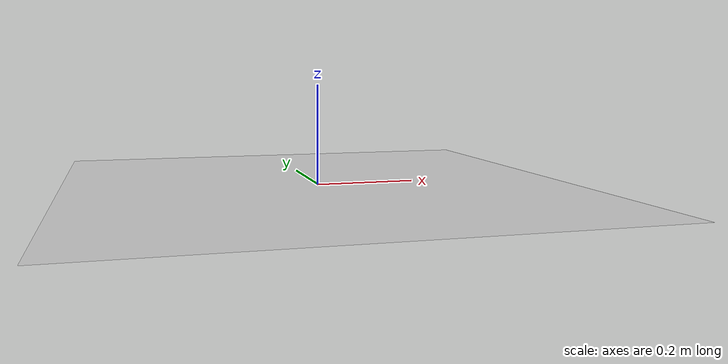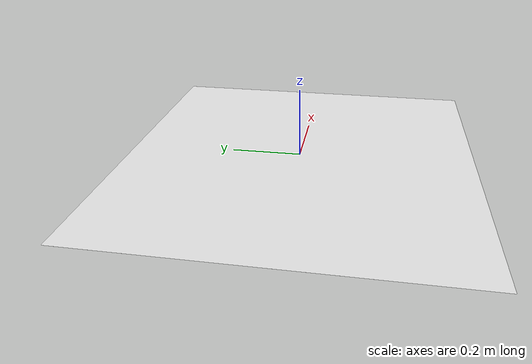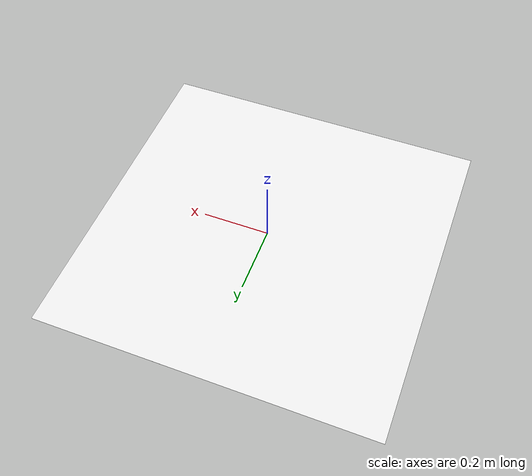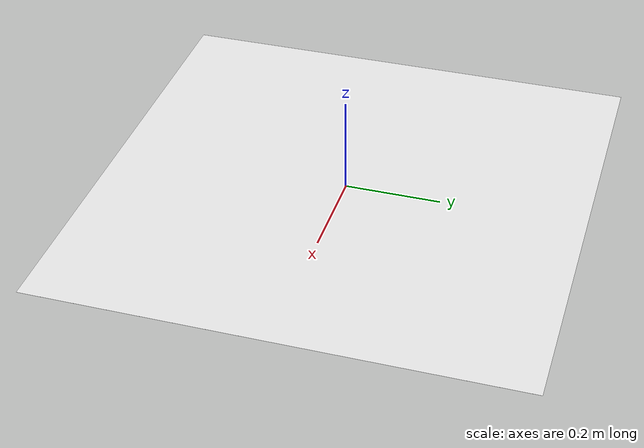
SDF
<?xml version='1.0'?>
<sdf version='1.6'>
    <model name='aruco_visual_marker_0'>
     <pose>0 0 0 0 0 0</pose>
         <link name='marker'>
     <pose frame=''>0 0 0 0 0 3.14</pose>
      <visual name='visual'>
          <geometry>
               <box>
                    <size>1 1 1e-05</size>
               </box>
          </geometry>
          <material>
              <script>
                  <uri>model://fractal_marker/materials/scripts</uri>
                  <uri>model://fractal_marker/materials/textures</uri>
                  <name>ArucoVisualMarker0</name>
              </script>
       <ambient>1 1 1 1</ambient>
       <diffuse>1 1 1 1</diffuse>
       <specular>0 0 0 1</specular>
       <emissive>1 1 1 0</emissive>
       <shader type='vertex'>
         <normal_map>__default__</normal_map>
       </shader>
     </material>
     <pose frame=''>0 0 0 0 0 0</pose>
     <cast_shadows>1</cast_shadows>
     <transparency>0</transparency>
   </visual>
   <collision name='collision'>
     <laser_retro>0</laser_retro>
     <max_contacts>10</max_contacts>
     <pose frame=''>0 0 0 0 0 0</pose>
         <geometry>
           <box>
            <size>1 1 1e-05</size>
          </box>
        </geometry>
        </collision>
     </link>
     <static>1</static>
     <allow_auto_disable>1</allow_auto_disable>
   </model>
  </sdf>
